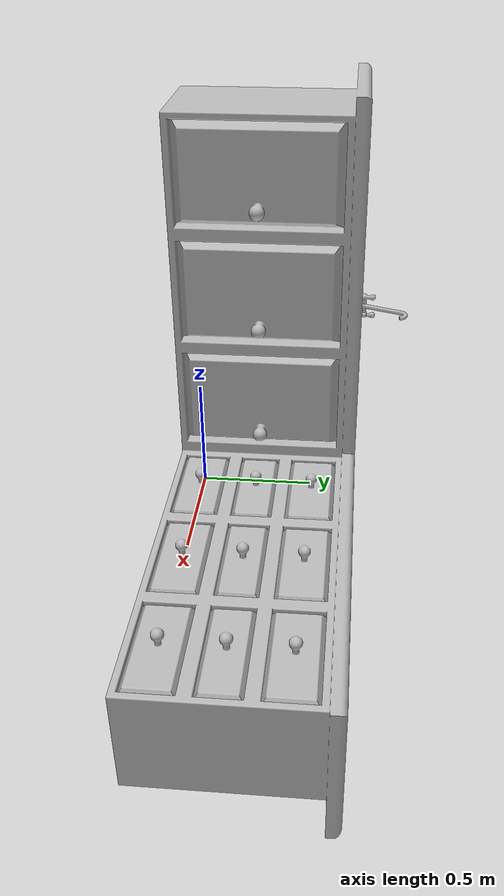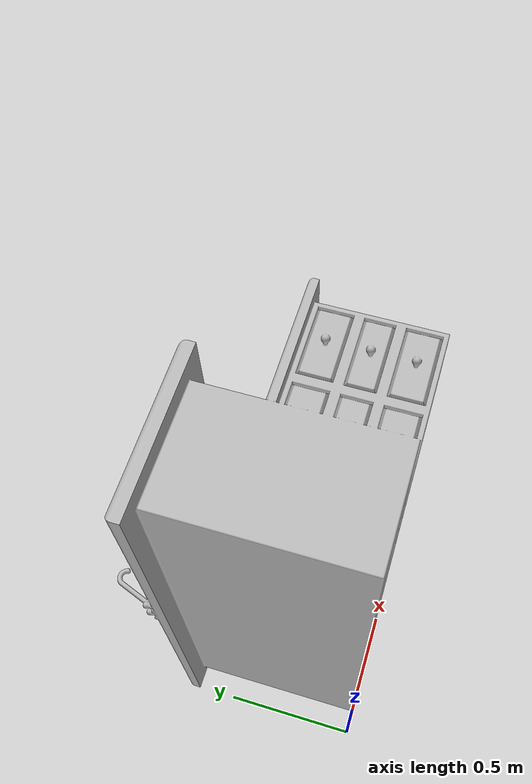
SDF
<?xml version="1.0"?>

<sdf version="1.6">
<model name="Kitchen">
  <static>1</static>
    <link name="link">
      <inertial>
        <pose>0.0 0.0 0.0 0.0 0.0 0.0</pose>
        <mass>1</mass>
        <inertia>
          <ixx>0.0</ixx>
          <ixy>0.0</ixy>
          <ixz>0.0</ixz>
          <iyy>0.0</iyy>
          <iyz>0.0</iyz>
          <izz>0.0</izz>
        </inertia>
      </inertial>
      <collision name="collision">
        <pose>0.0 0.0 0.0 0.0 0.0 0.0</pose>
        <geometry>
          <mesh>
				  	<uri>model://Kitchen/meshes/kitchen.stl</uri>
				  	<scale>0.0005 0.0005 0.0005</scale>
				  </mesh>
        </geometry>
      </collision>
      <visual name="visual">
        <pose>0.0 0.0 0.0 0.0 0.0 0.0</pose>
        <geometry>
          <mesh>
				  	<uri>model://Kitchen/meshes/kitchen.stl</uri>
				  	<scale>0.0005 0.0005 0.0005</scale>
				  </mesh>
        </geometry>
      </visual>
    </link>
  </model>
 </sdf>
